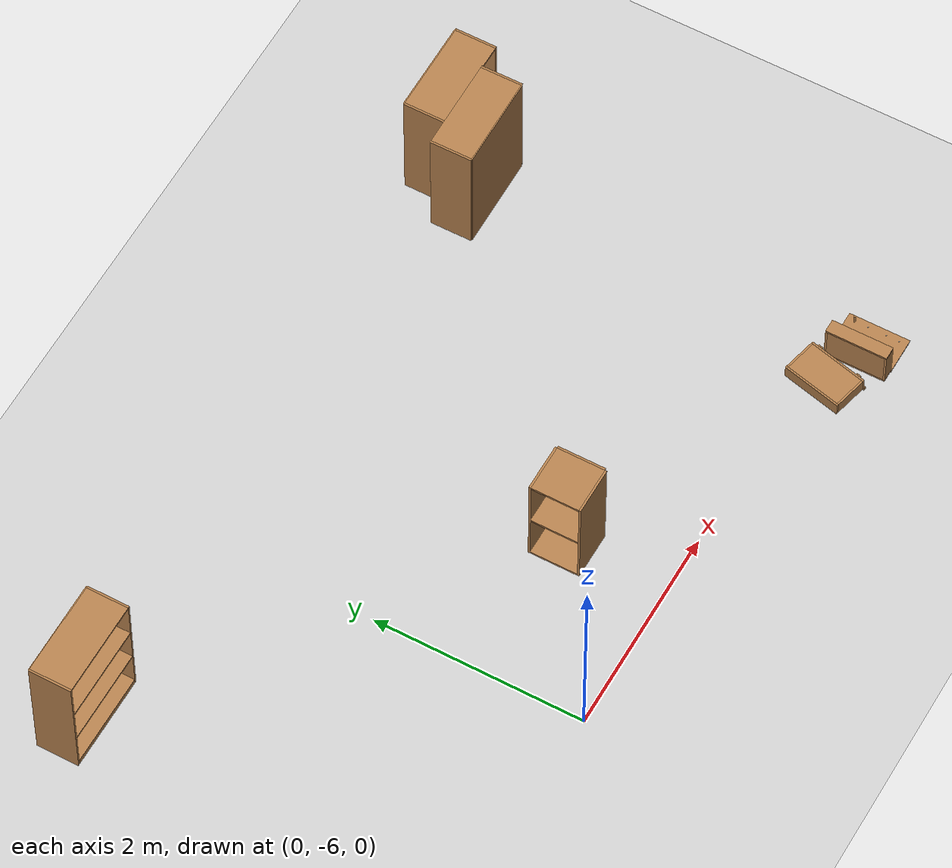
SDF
<sdf version="1.6">
 <world name="default">
  <model name="ground_plane">
   <static>1</static>
   <link name="link">
    <collision name="collision">
     <geometry><plane><normal>0 0 1</normal><size>100 100</size></plane></geometry>
     <surface>
      <contact><collide_bitmask>65535</collide_bitmask></contact>
      <friction><ode><mu>100</mu><mu2>50</mu2></ode></friction>
     </surface>
    </collision>
    <visual name="visual">
     <cast_shadows>0</cast_shadows>
     <geometry><plane><normal>0 0 1</normal><size>100 100</size></plane></geometry>
     <material>
      <script><uri>file://media/materials/scripts/gazebo.material</uri><name>Gazebo/Grey</name></script>
     </material>
    </visual>
   </link>
  </model>
  <model name="bookshelf">
   <static>1</static>
   <link name="link">
    <inertial><mass>1</mass></inertial>
    <collision name="back">
     <pose>0 0.005 0.6 0 -0 0</pose>
     <geometry><box><size>0.9 0.01 1.2</size></box></geometry>
    </collision>
    <visual name="visual1">
     <pose>0 0.005 0.6 0 -0 0</pose>
     <geometry><box><size>0.9 0.01 1.2</size></box></geometry>
     <material>
      <script><uri>file://media/materials/scripts/gazebo.material</uri><name>Gazebo/Wood</name></script>
     </material>
    </visual>
    <collision name="left_side">
     <pose>0.45 -0.195 0.6 0 -0 0</pose>
     <geometry><box><size>0.02 0.4 1.2</size></box></geometry>
    </collision>
    <visual name="visual2">
     <pose>0.45 -0.195 0.6 0 -0 0</pose>
     <geometry><box><size>0.02 0.4 1.2</size></box></geometry>
     <material>
      <script><uri>file://media/materials/scripts/gazebo.material</uri><name>Gazebo/Wood</name></script>
     </material>
    </visual>
    <collision name="right_side">
     <pose>-0.45 -0.195 0.6 0 -0 0</pose>
     <geometry><box><size>0.02 0.4 1.2</size></box></geometry>
    </collision>
    <visual name="visual3">
     <pose>-0.45 -0.195 0.6 0 -0 0</pose>
     <geometry><box><size>0.02 0.4 1.2</size></box></geometry>
     <material>
      <script><uri>file://media/materials/scripts/gazebo.material</uri><name>Gazebo/Wood</name></script>
     </material>
    </visual>
    <collision name="bottom">
     <pose>0 -0.195 0.03 0 -0 0</pose>
     <geometry><box><size>0.88 0.4 0.06</size></box></geometry>
    </collision>
    <visual name="visual4">
     <pose>0 -0.195 0.03 0 -0 0</pose>
     <geometry><box><size>0.88 0.4 0.06</size></box></geometry>
     <material>
      <script><uri>file://media/materials/scripts/gazebo.material</uri><name>Gazebo/Wood</name></script>
     </material>
    </visual>
    <collision name="top">
     <pose>0 -0.195 1.19 0 -0 0</pose>
     <geometry><box><size>0.88 0.4 0.02</size></box></geometry>
    </collision>
    <visual name="visual5">
     <pose>0 -0.195 1.19 0 -0 0</pose>
     <geometry><box><size>0.88 0.4 0.02</size></box></geometry>
     <material>
      <script><uri>file://media/materials/scripts/gazebo.material</uri><name>Gazebo/Wood</name></script>
     </material>
    </visual>
    <collision name="low_shelf">
     <pose>0 -0.195 0.43 0 -0 0</pose>
     <geometry><box><size>0.88 0.4 0.02</size></box></geometry>
    </collision>
    <visual name="visual6">
     <pose>0 -0.195 0.43 0 -0 0</pose>
     <geometry><box><size>0.88 0.4 0.02</size></box></geometry>
     <material>
      <script><uri>file://media/materials/scripts/gazebo.material</uri><name>Gazebo/Wood</name></script>
     </material>
    </visual>
    <collision name="high_shelf">
     <pose>0 -0.195 0.8 0 -0 0</pose>
     <geometry><box><size>0.88 0.4 0.02</size></box></geometry>
    </collision>
    <visual name="visual7">
     <pose>0 -0.195 0.8 0 -0 0</pose>
     <geometry><box><size>0.88 0.4 0.02</size></box></geometry>
     <material>
      <script><uri>file://media/materials/scripts/gazebo.material</uri><name>Gazebo/Wood</name></script>
     </material>
    </visual>
   </link>
   <pose>4.43633 -2.04794 0 0 -0 0</pose>
  </model>
  <model name="bookshelf_0">
   <static>1</static>
   <link name="link">
    <inertial><mass>1</mass></inertial>
    <collision name="back">
     <pose>0 0.005 0.6 0 -0 0</pose>
     <geometry><box><size>0.9 0.01 1.2</size></box></geometry>
    </collision>
    <visual name="visual1">
     <pose>0 0.005 0.6 0 -0 0</pose>
     <geometry><box><size>0.9 0.01 1.2</size></box></geometry>
     <material>
      <script><uri>file://media/materials/scripts/gazebo.material</uri><name>Gazebo/Wood</name></script>
     </material>
    </visual>
    <collision name="left_side">
     <pose>0.45 -0.195 0.6 0 -0 0</pose>
     <geometry><box><size>0.02 0.4 1.2</size></box></geometry>
    </collision>
    <visual name="visual2">
     <pose>0.45 -0.195 0.6 0 -0 0</pose>
     <geometry><box><size>0.02 0.4 1.2</size></box></geometry>
     <material>
      <script><uri>file://media/materials/scripts/gazebo.material</uri><name>Gazebo/Wood</name></script>
     </material>
    </visual>
    <collision name="right_side">
     <pose>-0.45 -0.195 0.6 0 -0 0</pose>
     <geometry><box><size>0.02 0.4 1.2</size></box></geometry>
    </collision>
    <visual name="visual3">
     <pose>-0.45 -0.195 0.6 0 -0 0</pose>
     <geometry><box><size>0.02 0.4 1.2</size></box></geometry>
     <material>
      <script><uri>file://media/materials/scripts/gazebo.material</uri><name>Gazebo/Wood</name></script>
     </material>
    </visual>
    <collision name="bottom">
     <pose>0 -0.195 0.03 0 -0 0</pose>
     <geometry><box><size>0.88 0.4 0.06</size></box></geometry>
    </collision>
    <visual name="visual4">
     <pose>0 -0.195 0.03 0 -0 0</pose>
     <geometry><box><size>0.88 0.4 0.06</size></box></geometry>
     <material>
      <script><uri>file://media/materials/scripts/gazebo.material</uri><name>Gazebo/Wood</name></script>
     </material>
    </visual>
    <collision name="top">
     <pose>0 -0.195 1.19 0 -0 0</pose>
     <geometry><box><size>0.88 0.4 0.02</size></box></geometry>
    </collision>
    <visual name="visual5">
     <pose>0 -0.195 1.19 0 -0 0</pose>
     <geometry><box><size>0.88 0.4 0.02</size></box></geometry>
     <material>
      <script><uri>file://media/materials/scripts/gazebo.material</uri><name>Gazebo/Wood</name></script>
     </material>
    </visual>
    <collision name="low_shelf">
     <pose>0 -0.195 0.43 0 -0 0</pose>
     <geometry><box><size>0.88 0.4 0.02</size></box></geometry>
    </collision>
    <visual name="visual6">
     <pose>0 -0.195 0.43 0 -0 0</pose>
     <geometry><box><size>0.88 0.4 0.02</size></box></geometry>
     <material>
      <script><uri>file://media/materials/scripts/gazebo.material</uri><name>Gazebo/Wood</name></script>
     </material>
    </visual>
    <collision name="high_shelf">
     <pose>0 -0.195 0.8 0 -0 0</pose>
     <geometry><box><size>0.88 0.4 0.02</size></box></geometry>
    </collision>
    <visual name="visual7">
     <pose>0 -0.195 0.8 0 -0 0</pose>
     <geometry><box><size>0.88 0.4 0.02</size></box></geometry>
     <material>
      <script><uri>file://media/materials/scripts/gazebo.material</uri><name>Gazebo/Wood</name></script>
     </material>
    </visual>
   </link>
   <pose>4.20146 -2.83011 0 0 0 -3.13439</pose>
  </model>
  <model name="cabinet">
   <static>1</static>
   <link name="cabinet_bottom_plate">
    <inertial>
     <pose>0 0 -1 0 -0 0</pose>
     <inertia><ixx>2.05</ixx><ixy>0</ixy><ixz>0</ixz><iyy>2.05</iyy><iyz>0</iyz><izz>2.05</izz></inertia>
     <mass>25</mass>
    </inertial>
    <collision name="cabinet_bottom_plate_geom">
     <pose>0 0 0.01 0 -0 0</pose>
     <geometry><box><size>0.45 0.45 0.02</size></box></geometry>
    </collision>
    <visual name="cabinet_bottom_plate_geom_visual">
     <pose>0 0 0.01 0 -0 0</pose>
     <geometry><box><size>0.45 0.45 0.02</size></box></geometry>
     <material>
      <script><uri>file://media/materials/scripts/gazebo.material</uri><name>Gazebo/Wood</name></script>
     </material>
    </visual>
    <collision name="cabinet_bottom_plate_geom_cabinet_back_plate">
     <pose>0.235 0 0.51 0 -0 0</pose>
     <geometry><box><size>0.02 0.45 1.02</size></box></geometry>
    </collision>
    <visual name="cabinet_bottom_plate_geom_cabinet_back_plate_visual">
     <pose>0.235 0 0.51 0 -0 0</pose>
     <geometry><box><size>0.02 0.45 1.02</size></box></geometry>
     <material>
      <script><uri>file://media/materials/scripts/gazebo.material</uri><name>Gazebo/Wood</name></script>
     </material>
    </visual>
    <collision name="cabinet_bottom_plate_geom_cabinet_left_plate">
     <pose>0 0.235 0.51 0 -0 0</pose>
     <geometry><box><size>0.45 0.02 1.02</size></box></geometry>
    </collision>
    <visual name="cabinet_bottom_plate_geom_cabinet_left_plate_visual">
     <pose>0 0.235 0.51 0 -0 0</pose>
     <geometry><box><size>0.45 0.02 1.02</size></box></geometry>
     <material>
      <script><uri>file://media/materials/scripts/gazebo.material</uri><name>Gazebo/Wood</name></script>
     </material>
    </visual>
    <collision name="cabinet_bottom_plate_geom_cabinet_middle_plate">
     <pose>0 0 0.51 0 -0 0</pose>
     <geometry><box><size>0.45 0.45 0.02</size></box></geometry>
    </collision>
    <visual name="cabinet_bottom_plate_geom_cabinet_middle_plate_visual">
     <pose>0 0 0.51 0 -0 0</pose>
     <geometry><box><size>0.45 0.45 0.02</size></box></geometry>
     <material>
      <script><uri>file://media/materials/scripts/gazebo.material</uri><name>Gazebo/Wood</name></script>
     </material>
    </visual>
    <collision name="cabinet_bottom_plate_geom_cabinet_right_plate">
     <pose>0 -0.235 0.51 0 -0 0</pose>
     <geometry><box><size>0.45 0.02 1.02</size></box></geometry>
    </collision>
    <visual name="cabinet_bottom_plate_geom_cabinet_right_plate_visual">
     <pose>0 -0.235 0.51 0 -0 0</pose>
     <geometry><box><size>0.45 0.02 1.02</size></box></geometry>
     <material>
      <script><uri>file://media/materials/scripts/gazebo.material</uri><name>Gazebo/Wood</name></script>
     </material>
    </visual>
    <collision name="cabinet_bottom_plate_geom_cabinet_top_plate">
     <pose>0 0 1.01 0 -0 0</pose>
     <geometry><box><size>0.45 0.45 0.02</size></box></geometry>
    </collision>
    <visual name="cabinet_bottom_plate_geom_cabinet_top_plate_visual">
     <pose>0 0 1.01 0 -0 0</pose>
     <geometry><box><size>0.45 0.45 0.02</size></box></geometry>
     <material>
      <script><uri>file://media/materials/scripts/gazebo.material</uri><name>Gazebo/Wood</name></script>
     </material>
    </visual>
   </link>
   <pose>1.43633 -5.04516 0 0 -0 0</pose>
  </model>
  <model name="wooden_case_0">
   <link name="base">
    <pose>0 0 0.024 0 -0 0</pose>
    <inertial>
     <pose>-0.022184 0 0.171592 0 -0 0</pose>
     <mass>3.96264</mass>
     <inertia>
      <ixx>0.213536</ixx>
      <ixy>0</ixy>
      <ixz>0.000779377</ixz>
      <iyy>0.0708943</iyy>
      <iyz>0</iyz>
      <izz>0.154604</izz>
     </inertia>
    </inertial>
    <collision name="collision_back">
     <pose>-0.053975 0 0.1778 0 -0 0</pose>
     <geometry><box><size>0.01905 0.5461 0.3175</size></box></geometry>
     <surface>
      <contact>
       <poissons_ratio>0.347</poissons_ratio>
       <elastic_modulus>8.8e+09</elastic_modulus>
       <ode><kp>100000</kp><kd>100</kd><max_vel>100</max_vel><min_depth>0.001</min_depth></ode>
      </contact>
      <friction>
       <torsional>
        <coefficient>1</coefficient>
        <use_patch_radius>0</use_patch_radius>
        <surface_radius>0.01</surface_radius>
       </torsional>
      </friction>
     </surface>
    </collision>
    <visual name="visual_back">
     <pose>-0.053975 0 0.1778 0 -0 0</pose>
     <geometry><box><size>0.01905 0.5461 0.3175</size></box></geometry>
     <material>
      <script><uri>file://media/materials/scripts/gazebo.material</uri><name>Gazebo/Wood</name></script>
     </material>
    </visual>
    <collision name="collision_bottom">
     <pose>0 0 0.009525 0 -0 0</pose>
     <geometry><box><size>0.127 0.5842 0.01905</size></box></geometry>
     <surface>
      <contact>
       <poissons_ratio>0.347</poissons_ratio>
       <elastic_modulus>8.8e+09</elastic_modulus>
       <ode><kp>100000</kp><kd>100</kd><max_vel>100</max_vel><min_depth>0.001</min_depth></ode>
      </contact>
      <friction>
       <torsional>
        <coefficient>1</coefficient>
        <use_patch_radius>0</use_patch_radius>
        <surface_radius>0.01</surface_radius>
       </torsional>
      </friction>
     </surface>
    </collision>
    <visual name="visual_bottom">
     <pose>0 0 0.009525 0 -0 0</pose>
     <geometry><box><size>0.127 0.5842 0.01905</size></box></geometry>
     <material>
      <script><uri>file://media/materials/scripts/gazebo.material</uri><name>Gazebo/Wood</name></script>
     </material>
    </visual>
    <collision name="collision_top">
     <pose>0 0 0.346075 0 -0 0</pose>
     <geometry><box><size>0.127 0.5842 0.01905</size></box></geometry>
     <surface>
      <contact>
       <poissons_ratio>0.347</poissons_ratio>
       <elastic_modulus>8.8e+09</elastic_modulus>
       <ode><kp>100000</kp><kd>100</kd><max_vel>100</max_vel><min_depth>0.001</min_depth></ode>
      </contact>
      <friction>
       <torsional>
        <coefficient>1</coefficient>
        <use_patch_radius>0</use_patch_radius>
        <surface_radius>0.01</surface_radius>
       </torsional>
      </friction>
     </surface>
    </collision>
    <visual name="visual_top">
     <pose>0 0 0.346075 0 -0 0</pose>
     <geometry><box><size>0.127 0.5842 0.01905</size></box></geometry>
     <material>
      <script><uri>file://media/materials/scripts/gazebo.material</uri><name>Gazebo/Wood</name></script>
     </material>
    </visual>
    <collision name="collision_left">
     <pose>0 -0.282575 0.1778 0 -0 0</pose>
     <geometry><box><size>0.127 0.01905 0.3175</size></box></geometry>
     <surface>
      <contact>
       <poissons_ratio>0.347</poissons_ratio>
       <elastic_modulus>8.8e+09</elastic_modulus>
       <ode><kp>100000</kp><kd>100</kd><max_vel>100</max_vel><min_depth>0.001</min_depth></ode>
      </contact>
      <friction>
       <torsional>
        <coefficient>1</coefficient>
        <use_patch_radius>0</use_patch_radius>
        <surface_radius>0.01</surface_radius>
       </torsional>
      </friction>
     </surface>
    </collision>
    <visual name="visual_left">
     <pose>0 -0.282575 0.1778 0 -0 0</pose>
     <geometry><box><size>0.127 0.01905 0.3175</size></box></geometry>
     <material>
      <script><uri>file://media/materials/scripts/gazebo.material</uri><name>Gazebo/Wood</name></script>
     </material>
    </visual>
    <collision name="collision_right">
     <pose>0 0.282575 0.1778 0 -0 0</pose>
     <geometry><box><size>0.127 0.01905 0.3175</size></box></geometry>
     <surface>
      <contact>
       <poissons_ratio>0.347</poissons_ratio>
       <elastic_modulus>8.8e+09</elastic_modulus>
       <ode><kp>100000</kp><kd>100</kd><max_vel>100</max_vel><min_depth>0.001</min_depth></ode>
      </contact>
      <friction>
       <torsional>
        <coefficient>1</coefficient>
        <use_patch_radius>0</use_patch_radius>
        <surface_radius>0.01</surface_radius>
       </torsional>
      </friction>
     </surface>
    </collision>
    <visual name="visual_right">
     <pose>0 0.282575 0.1778 0 -0 0</pose>
     <geometry><box><size>0.127 0.01905 0.3175</size></box></geometry>
     <material>
      <script><uri>file://media/materials/scripts/gazebo.material</uri><name>Gazebo/Wood</name></script>
     </material>
    </visual>
    <collision name="collision_block_left">
     <pose>0.0095 -0.2151 -0.012 0 -0 0</pose>
     <geometry><box><size>0.108 0.05 0.024</size></box></geometry>
     <surface>
      <contact>
       <poissons_ratio>0.347</poissons_ratio>
       <elastic_modulus>8.8e+09</elastic_modulus>
       <ode><kp>100000</kp><kd>100</kd><max_vel>100</max_vel><min_depth>0.001</min_depth></ode>
      </contact>
      <friction>
       <torsional>
        <coefficient>1</coefficient>
        <use_patch_radius>0</use_patch_radius>
        <surface_radius>0.01</surface_radius>
       </torsional>
      </friction>
     </surface>
    </collision>
    <visual name="visual_block_left">
     <pose>0.0095 -0.2151 -0.012 0 -0 0</pose>
     <geometry><box><size>0.108 0.05 0.024</size></box></geometry>
     <material>
      <script><uri>file://media/materials/scripts/gazebo.material</uri><name>Gazebo/Wood</name></script>
     </material>
    </visual>
    <collision name="collision_block_right">
     <pose>0.0095 0.2151 -0.012 0 -0 0</pose>
     <geometry><box><size>0.108 0.05 0.024</size></box></geometry>
     <surface>
      <contact>
       <poissons_ratio>0.347</poissons_ratio>
       <elastic_modulus>8.8e+09</elastic_modulus>
       <ode><kp>100000</kp><kd>100</kd><max_vel>100</max_vel><min_depth>0.001</min_depth></ode>
      </contact>
      <friction>
       <torsional>
        <coefficient>1</coefficient>
        <use_patch_radius>0</use_patch_radius>
        <surface_radius>0.01</surface_radius>
       </torsional>
      </friction>
     </surface>
    </collision>
    <visual name="visual_block_right">
     <pose>0.0095 0.2151 -0.012 0 -0 0</pose>
     <geometry><box><size>0.108 0.05 0.024</size></box></geometry>
     <material>
      <script><uri>file://media/materials/scripts/gazebo.material</uri><name>Gazebo/Wood</name></script>
     </material>
    </visual>
   </link>
   <link name="lid">
    <pose>0.243775 0 0.009525 0 -0 0</pose>
    <inertial>
     <mass>1.97874</mass>
     <inertia>
      <ixx>0.0563367</ixx>
      <ixy>0</ixy>
      <ixz>0</ixz>
      <iyy>0.020911</iyy>
      <iyz>0</iyz>
      <izz>0.0771281</izz>
     </inertia>
    </inertial>
    <collision name="collision">
     <geometry><box><size>0.3556 0.5842 0.01905</size></box></geometry>
     <surface>
      <contact>
       <poissons_ratio>0.347</poissons_ratio>
       <elastic_modulus>8.8e+09</elastic_modulus>
       <ode><kp>100000</kp><kd>100</kd><max_vel>100</max_vel><min_depth>0.001</min_depth></ode>
      </contact>
      <friction>
       <torsional>
        <coefficient>1</coefficient>
        <use_patch_radius>0</use_patch_radius>
        <surface_radius>0.01</surface_radius>
       </torsional>
      </friction>
     </surface>
    </collision>
    <visual name="visual">
     <geometry><box><size>0.3556 0.5842 0.01905</size></box></geometry>
     <material>
      <script><uri>file://media/materials/scripts/gazebo.material</uri><name>Gazebo/Wood</name></script>
     </material>
    </visual>
    <visual name="tee_nut_1">
     <pose>0.122 -0.216 0 0 -0 0</pose>
     <geometry><cylinder><radius>0.00635</radius><length>0.0192405</length></cylinder></geometry>
     <material>
      <script><uri>file://media/materials/scripts/gazebo.material</uri><name>Gazebo/Grey</name></script>
     </material>
    </visual>
    <visual name="tee_nut_2">
     <pose>0.122 -0.088 0 0 -0 0</pose>
     <geometry><cylinder><radius>0.00635</radius><length>0.0192405</length></cylinder></geometry>
     <material>
      <script><uri>file://media/materials/scripts/gazebo.material</uri><name>Gazebo/Grey</name></script>
     </material>
    </visual>
    <visual name="tee_nut_3">
     <pose>0.122 0.088 0 0 -0 0</pose>
     <geometry><cylinder><radius>0.00635</radius><length>0.0192405</length></cylinder></geometry>
     <material>
      <script><uri>file://media/materials/scripts/gazebo.material</uri><name>Gazebo/Grey</name></script>
     </material>
    </visual>
    <visual name="tee_nut_4">
     <pose>0.122 0.216 0 0 -0 0</pose>
     <geometry><cylinder><radius>0.00635</radius><length>0.0192405</length></cylinder></geometry>
     <material>
      <script><uri>file://media/materials/scripts/gazebo.material</uri><name>Gazebo/Grey</name></script>
     </material>
    </visual>
   </link>
   <joint name="lid_hinge" type="revolute">
    <pose>-0.1778 0 0.01905 0 -0 0</pose>
    <parent>base</parent>
    <child>lid</child>
    <axis>
     <xyz>0 1 0</xyz>
     <limit><upper>0.523599</upper><lower>-1.5708</lower></limit>
     <use_parent_model_frame>0</use_parent_model_frame>
     <dynamics><spring_reference>0</spring_reference><spring_stiffness>0</spring_stiffness></dynamics>
    </axis>
   </joint>
   <pose>4.11375 -6.23547 0.093399 -1e-06 1.57077 2.90553</pose>
  </model>
  <model name="wooden_case_wooden_peg">
   <link name="wooden_case::base">
    <pose>0 0 0.024 0 -0 0</pose>
    <inertial>
     <pose>-0.022184 0 0.171592 0 -0 0</pose>
     <mass>3.96264</mass>
     <inertia>
      <ixx>0.213536</ixx>
      <ixy>0</ixy>
      <ixz>0.000779377</ixz>
      <iyy>0.0708943</iyy>
      <iyz>0</iyz>
      <izz>0.154604</izz>
     </inertia>
    </inertial>
    <collision name="collision_back">
     <pose>-0.053975 0 0.1778 0 -0 0</pose>
     <geometry><box><size>0.01905 0.5461 0.3175</size></box></geometry>
     <surface>
      <contact>
       <poissons_ratio>0.347</poissons_ratio>
       <elastic_modulus>8.8e+09</elastic_modulus>
       <ode><kp>100000</kp><kd>100</kd><max_vel>100</max_vel><min_depth>0.001</min_depth></ode>
      </contact>
      <friction>
       <torsional>
        <coefficient>1</coefficient>
        <use_patch_radius>0</use_patch_radius>
        <surface_radius>0.01</surface_radius>
       </torsional>
      </friction>
     </surface>
    </collision>
    <visual name="visual_back">
     <pose>-0.053975 0 0.1778 0 -0 0</pose>
     <geometry><box><size>0.01905 0.5461 0.3175</size></box></geometry>
     <material>
      <script><uri>file://media/materials/scripts/gazebo.material</uri><name>Gazebo/Wood</name></script>
     </material>
    </visual>
    <collision name="collision_bottom">
     <pose>0 0 0.009525 0 -0 0</pose>
     <geometry><box><size>0.127 0.5842 0.01905</size></box></geometry>
     <surface>
      <contact>
       <poissons_ratio>0.347</poissons_ratio>
       <elastic_modulus>8.8e+09</elastic_modulus>
       <ode><kp>100000</kp><kd>100</kd><max_vel>100</max_vel><min_depth>0.001</min_depth></ode>
      </contact>
      <friction>
       <torsional>
        <coefficient>1</coefficient>
        <use_patch_radius>0</use_patch_radius>
        <surface_radius>0.01</surface_radius>
       </torsional>
      </friction>
     </surface>
    </collision>
    <visual name="visual_bottom">
     <pose>0 0 0.009525 0 -0 0</pose>
     <geometry><box><size>0.127 0.5842 0.01905</size></box></geometry>
     <material>
      <script><uri>file://media/materials/scripts/gazebo.material</uri><name>Gazebo/Wood</name></script>
     </material>
    </visual>
    <collision name="collision_top">
     <pose>0 0 0.346075 0 -0 0</pose>
     <geometry><box><size>0.127 0.5842 0.01905</size></box></geometry>
     <surface>
      <contact>
       <poissons_ratio>0.347</poissons_ratio>
       <elastic_modulus>8.8e+09</elastic_modulus>
       <ode><kp>100000</kp><kd>100</kd><max_vel>100</max_vel><min_depth>0.001</min_depth></ode>
      </contact>
      <friction>
       <torsional>
        <coefficient>1</coefficient>
        <use_patch_radius>0</use_patch_radius>
        <surface_radius>0.01</surface_radius>
       </torsional>
      </friction>
     </surface>
    </collision>
    <visual name="visual_top">
     <pose>0 0 0.346075 0 -0 0</pose>
     <geometry><box><size>0.127 0.5842 0.01905</size></box></geometry>
     <material>
      <script><uri>file://media/materials/scripts/gazebo.material</uri><name>Gazebo/Wood</name></script>
     </material>
    </visual>
    <collision name="collision_left">
     <pose>0 -0.282575 0.1778 0 -0 0</pose>
     <geometry><box><size>0.127 0.01905 0.3175</size></box></geometry>
     <surface>
      <contact>
       <poissons_ratio>0.347</poissons_ratio>
       <elastic_modulus>8.8e+09</elastic_modulus>
       <ode><kp>100000</kp><kd>100</kd><max_vel>100</max_vel><min_depth>0.001</min_depth></ode>
      </contact>
      <friction>
       <torsional>
        <coefficient>1</coefficient>
        <use_patch_radius>0</use_patch_radius>
        <surface_radius>0.01</surface_radius>
       </torsional>
      </friction>
     </surface>
    </collision>
    <visual name="visual_left">
     <pose>0 -0.282575 0.1778 0 -0 0</pose>
     <geometry><box><size>0.127 0.01905 0.3175</size></box></geometry>
     <material>
      <script><uri>file://media/materials/scripts/gazebo.material</uri><name>Gazebo/Wood</name></script>
     </material>
    </visual>
    <collision name="collision_right">
     <pose>0 0.282575 0.1778 0 -0 0</pose>
     <geometry><box><size>0.127 0.01905 0.3175</size></box></geometry>
     <surface>
      <contact>
       <poissons_ratio>0.347</poissons_ratio>
       <elastic_modulus>8.8e+09</elastic_modulus>
       <ode><kp>100000</kp><kd>100</kd><max_vel>100</max_vel><min_depth>0.001</min_depth></ode>
      </contact>
      <friction>
       <torsional>
        <coefficient>1</coefficient>
        <use_patch_radius>0</use_patch_radius>
        <surface_radius>0.01</surface_radius>
       </torsional>
      </friction>
     </surface>
    </collision>
    <visual name="visual_right">
     <pose>0 0.282575 0.1778 0 -0 0</pose>
     <geometry><box><size>0.127 0.01905 0.3175</size></box></geometry>
     <material>
      <script><uri>file://media/materials/scripts/gazebo.material</uri><name>Gazebo/Wood</name></script>
     </material>
    </visual>
    <collision name="collision_block_left">
     <pose>0.0095 -0.2151 -0.012 0 -0 0</pose>
     <geometry><box><size>0.108 0.05 0.024</size></box></geometry>
     <surface>
      <contact>
       <poissons_ratio>0.347</poissons_ratio>
       <elastic_modulus>8.8e+09</elastic_modulus>
       <ode><kp>100000</kp><kd>100</kd><max_vel>100</max_vel><min_depth>0.001</min_depth></ode>
      </contact>
      <friction>
       <torsional>
        <coefficient>1</coefficient>
        <use_patch_radius>0</use_patch_radius>
        <surface_radius>0.01</surface_radius>
       </torsional>
      </friction>
     </surface>
    </collision>
    <visual name="visual_block_left">
     <pose>0.0095 -0.2151 -0.012 0 -0 0</pose>
     <geometry><box><size>0.108 0.05 0.024</size></box></geometry>
     <material>
      <script><uri>file://media/materials/scripts/gazebo.material</uri><name>Gazebo/Wood</name></script>
     </material>
    </visual>
    <collision name="collision_block_right">
     <pose>0.0095 0.2151 -0.012 0 -0 0</pose>
     <geometry><box><size>0.108 0.05 0.024</size></box></geometry>
     <surface>
      <contact>
       <poissons_ratio>0.347</poissons_ratio>
       <elastic_modulus>8.8e+09</elastic_modulus>
       <ode><kp>100000</kp><kd>100</kd><max_vel>100</max_vel><min_depth>0.001</min_depth></ode>
      </contact>
      <friction>
       <torsional>
        <coefficient>1</coefficient>
        <use_patch_radius>0</use_patch_radius>
        <surface_radius>0.01</surface_radius>
       </torsional>
      </friction>
     </surface>
    </collision>
    <visual name="visual_block_right">
     <pose>0.0095 0.2151 -0.012 0 -0 0</pose>
     <geometry><box><size>0.108 0.05 0.024</size></box></geometry>
     <material>
      <script><uri>file://media/materials/scripts/gazebo.material</uri><name>Gazebo/Wood</name></script>
     </material>
    </visual>
   </link>
   <link name="wooden_case::lid">
    <pose>0.243775 0 0.009525 0 -0 0</pose>
    <inertial>
     <mass>1.97874</mass>
     <inertia>
      <ixx>0.0563367</ixx>
      <ixy>0</ixy>
      <ixz>0</ixz>
      <iyy>0.020911</iyy>
      <iyz>0</iyz>
      <izz>0.0771281</izz>
     </inertia>
    </inertial>
    <collision name="collision">
     <geometry><box><size>0.3556 0.5842 0.01905</size></box></geometry>
     <surface>
      <contact>
       <poissons_ratio>0.347</poissons_ratio>
       <elastic_modulus>8.8e+09</elastic_modulus>
       <ode><kp>100000</kp><kd>100</kd><max_vel>100</max_vel><min_depth>0.001</min_depth></ode>
      </contact>
      <friction>
       <torsional>
        <coefficient>1</coefficient>
        <use_patch_radius>0</use_patch_radius>
        <surface_radius>0.01</surface_radius>
       </torsional>
      </friction>
     </surface>
    </collision>
    <visual name="visual">
     <geometry><box><size>0.3556 0.5842 0.01905</size></box></geometry>
     <material>
      <script><uri>file://media/materials/scripts/gazebo.material</uri><name>Gazebo/Wood</name></script>
     </material>
    </visual>
    <visual name="tee_nut_1">
     <pose>0.122 -0.216 0 0 -0 0</pose>
     <geometry><cylinder><radius>0.00635</radius><length>0.0192405</length></cylinder></geometry>
     <material>
      <script><uri>file://media/materials/scripts/gazebo.material</uri><name>Gazebo/Grey</name></script>
     </material>
    </visual>
    <visual name="tee_nut_2">
     <pose>0.122 -0.088 0 0 -0 0</pose>
     <geometry><cylinder><radius>0.00635</radius><length>0.0192405</length></cylinder></geometry>
     <material>
      <script><uri>file://media/materials/scripts/gazebo.material</uri><name>Gazebo/Grey</name></script>
     </material>
    </visual>
    <visual name="tee_nut_3">
     <pose>0.122 0.088 0 0 -0 0</pose>
     <geometry><cylinder><radius>0.00635</radius><length>0.0192405</length></cylinder></geometry>
     <material>
      <script><uri>file://media/materials/scripts/gazebo.material</uri><name>Gazebo/Grey</name></script>
     </material>
    </visual>
    <visual name="tee_nut_4">
     <pose>0.122 0.216 0 0 -0 0</pose>
     <geometry><cylinder><radius>0.00635</radius><length>0.0192405</length></cylinder></geometry>
     <material>
      <script><uri>file://media/materials/scripts/gazebo.material</uri><name>Gazebo/Grey</name></script>
     </material>
    </visual>
   </link>
   <joint name="wooden_case::lid_hinge" type="revolute">
    <pose>-0.1778 0 0.01905 0 -0 0</pose>
    <parent>wooden_case::base</parent>
    <child>wooden_case::lid</child>
    <axis>
     <xyz>0 1 0</xyz>
     <limit><upper>0.523599</upper><lower>-1.5708</lower></limit>
     <use_parent_model_frame>0</use_parent_model_frame>
     <dynamics><spring_reference>0</spring_reference><spring_stiffness>0</spring_stiffness></dynamics>
    </axis>
   </joint>
   <link name="peg::link">
    <pose>0.365774 0.216 0.05905 0 -0 0</pose>
    <inertial>
     <mass>0.0175</mass>
     <inertia>
      <ixx>9.74923e-06</ixx>
      <ixy>0</ixy>
      <ixz>0</ixz>
      <iyy>9.74923e-06</iyy>
      <iyz>0</iyz>
      <izz>8.31797e-07</izz>
     </inertia>
    </inertial>
    <collision name="collision">
     <geometry><cylinder><radius>0.00975</radius><length>0.08</length></cylinder></geometry>
     <surface>
      <contact>
       <poissons_ratio>0.347</poissons_ratio>
       <elastic_modulus>8.8e+09</elastic_modulus>
       <ode><kp>100000</kp><kd>100</kd><max_vel>100</max_vel><min_depth>0.001</min_depth></ode>
      </contact>
      <friction>
       <torsional>
        <coefficient>1</coefficient>
        <use_patch_radius>0</use_patch_radius>
        <surface_radius>0.01</surface_radius>
       </torsional>
      </friction>
     </surface>
    </collision>
    <visual name="visual">
     <geometry><cylinder><radius>0.00975</radius><length>0.08</length></cylinder></geometry>
     <material>
      <script><uri>file://media/materials/scripts/gazebo.material</uri><name>Gazebo/Wood</name></script>
     </material>
    </visual>
   </link>
   <joint name="case_peg" type="revolute">
    <child>peg::link</child>
    <parent>wooden_case::lid</parent>
    <axis>
     <xyz>0 0 1</xyz>
     <limit><upper>0</upper><lower>0</lower></limit>
     <use_parent_model_frame>0</use_parent_model_frame>
     <dynamics><spring_reference>0</spring_reference><spring_stiffness>0</spring_stiffness></dynamics>
    </axis>
   </joint>
   <pose>4.23715 -6.34138 -0.001057 -1e-06 -0.000428 1e-06</pose>
  </model>
  <model name="bookshelf_2">
   <static>1</static>
   <link name="link">
    <inertial><mass>1</mass></inertial>
    <collision name="back">
     <pose>0 0.005 0.6 0 -0 0</pose>
     <geometry><box><size>0.9 0.01 1.2</size></box></geometry>
    </collision>
    <visual name="visual1">
     <pose>0 0.005 0.6 0 -0 0</pose>
     <geometry><box><size>0.9 0.01 1.2</size></box></geometry>
     <material>
      <script><uri>file://media/materials/scripts/gazebo.material</uri><name>Gazebo/Wood</name></script>
     </material>
    </visual>
    <collision name="left_side">
     <pose>0.45 -0.195 0.6 0 -0 0</pose>
     <geometry><box><size>0.02 0.4 1.2</size></box></geometry>
    </collision>
    <visual name="visual2">
     <pose>0.45 -0.195 0.6 0 -0 0</pose>
     <geometry><box><size>0.02 0.4 1.2</size></box></geometry>
     <material>
      <script><uri>file://media/materials/scripts/gazebo.material</uri><name>Gazebo/Wood</name></script>
     </material>
    </visual>
    <collision name="right_side">
     <pose>-0.45 -0.195 0.6 0 -0 0</pose>
     <geometry><box><size>0.02 0.4 1.2</size></box></geometry>
    </collision>
    <visual name="visual3">
     <pose>-0.45 -0.195 0.6 0 -0 0</pose>
     <geometry><box><size>0.02 0.4 1.2</size></box></geometry>
     <material>
      <script><uri>file://media/materials/scripts/gazebo.material</uri><name>Gazebo/Wood</name></script>
     </material>
    </visual>
    <collision name="bottom">
     <pose>0 -0.195 0.03 0 -0 0</pose>
     <geometry><box><size>0.88 0.4 0.06</size></box></geometry>
    </collision>
    <visual name="visual4">
     <pose>0 -0.195 0.03 0 -0 0</pose>
     <geometry><box><size>0.88 0.4 0.06</size></box></geometry>
     <material>
      <script><uri>file://media/materials/scripts/gazebo.material</uri><name>Gazebo/Wood</name></script>
     </material>
    </visual>
    <collision name="top">
     <pose>0 -0.195 1.19 0 -0 0</pose>
     <geometry><box><size>0.88 0.4 0.02</size></box></geometry>
    </collision>
    <visual name="visual5">
     <pose>0 -0.195 1.19 0 -0 0</pose>
     <geometry><box><size>0.88 0.4 0.02</size></box></geometry>
     <material>
      <script><uri>file://media/materials/scripts/gazebo.material</uri><name>Gazebo/Wood</name></script>
     </material>
    </visual>
    <collision name="low_shelf">
     <pose>0 -0.195 0.43 0 -0 0</pose>
     <geometry><box><size>0.88 0.4 0.02</size></box></geometry>
    </collision>
    <visual name="visual6">
     <pose>0 -0.195 0.43 0 -0 0</pose>
     <geometry><box><size>0.88 0.4 0.02</size></box></geometry>
     <material>
      <script><uri>file://media/materials/scripts/gazebo.material</uri><name>Gazebo/Wood</name></script>
     </material>
    </visual>
    <collision name="high_shelf">
     <pose>0 -0.195 0.8 0 -0 0</pose>
     <geometry><box><size>0.88 0.4 0.02</size></box></geometry>
    </collision>
    <visual name="visual7">
     <pose>0 -0.195 0.8 0 -0 0</pose>
     <geometry><box><size>0.88 0.4 0.02</size></box></geometry>
     <material>
      <script><uri>file://media/materials/scripts/gazebo.material</uri><name>Gazebo/Wood</name></script>
     </material>
    </visual>
   </link>
   <pose>-1.92977 -2.18543 0 0 -0 0</pose>
  </model>
 </world>
</sdf>
